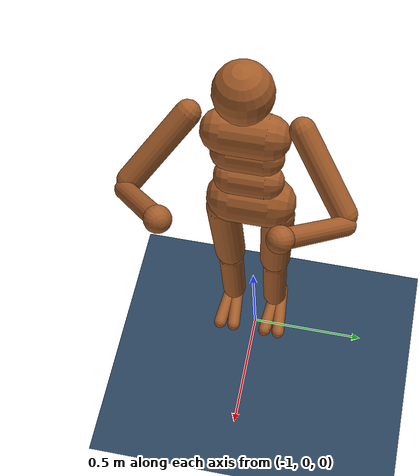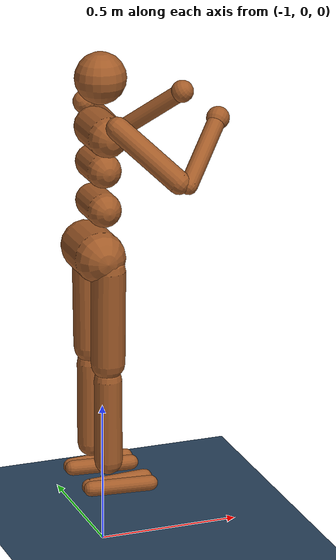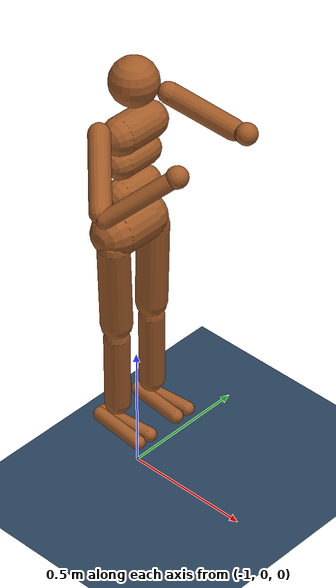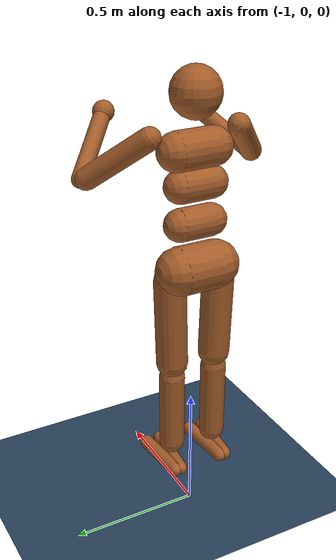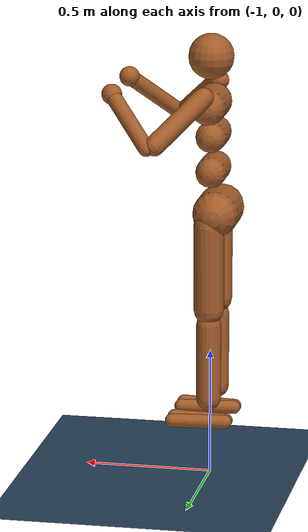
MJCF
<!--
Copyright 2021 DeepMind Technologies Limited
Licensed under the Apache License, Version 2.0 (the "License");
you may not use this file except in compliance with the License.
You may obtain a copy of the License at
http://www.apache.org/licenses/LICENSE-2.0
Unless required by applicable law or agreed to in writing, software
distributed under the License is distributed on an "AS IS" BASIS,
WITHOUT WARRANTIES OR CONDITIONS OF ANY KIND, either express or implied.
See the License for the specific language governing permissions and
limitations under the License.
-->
<mujoco model="Humanoid">
  <option timestep="0.005"/>

  <size memory="100M"/>

  <asset>
    <texture type="skybox" builtin="gradient" rgb1=".3 .5 .7" rgb2="0 0 0" width="512" height="512"/>
    <texture name="body" type="cube" builtin="flat" mark="cross" width="127" height="1278"
             rgb1="0.8 0.6 0.4" rgb2="0.8 0.6 0.4" markrgb="1 1 1" random="0.01"/>
    <material name="body" texture="body" texuniform="true" rgba="0.8 0.6 .4 1"/>
    <texture name="grid" type="2d" builtin="checker" width="512" height="512" rgb1=".1 .2 .3" rgb2=".2 .3 .4"/>
    <material name="grid" texture="grid" texrepeat="1 1" texuniform="true" reflectance=".2"/>
  </asset>

  <default>
    <motor ctrlrange="-1 1" ctrllimited="true"/>
    <default class="body">
      <geom type="capsule" condim="1" friction=".7" solimp=".9 .99 .003" solref=".015 1" material="body"/>
      <joint type="hinge" damping=".2" stiffness="1" armature=".01" limited="true" solimplimit="0 .99 .01"/>
      <default class="big_joint">
        <joint damping="5" stiffness="10"/>
        <default class="big_stiff_joint">
          <joint stiffness="20"/>
        </default>
      </default>
    </default>
  </default>

  <visual>
    <map force="0.1" zfar="30"/>
    <rgba haze="0.15 0.25 0.35 1"/>
    <quality shadowsize="4096"/>
    <global offwidth="800" offheight="800"/>
  </visual>

  <worldbody>
    <geom size="2.6 2.6 .05" type="plane" material="grid" condim="3"/>
    <light dir=".2 1 -.4" diffuse=".8 .8 .8" specular="0.3 0.3 0.3" pos="-2 -10 4" cutoff="35"/>
    <light dir="-.2 1 -.4" diffuse=".8 .8 .8" specular="0.3 0.3 0.3" pos="2 -10 4" cutoff="35"/>

    <body name="1a_torso" pos="-1 0 1.5" childclass="body">
      <camera name="1a_back" pos="-3 0 1" xyaxes="0 -1 0 1 0 2" mode="trackcom"/>
      <camera name="1a_side" pos="0 -3 1" xyaxes="1 0 0 0 1 2" mode="trackcom"/>
      <freejoint name="1a_root"/>
      <geom name="1a_torso" fromto="0 -.07 0 0 .07 0" size=".07"/>
      <geom name="1a_upper_waist" fromto="-.01 -.06 -.12 -.01 .06 -.12" size=".06"/>
      <body name="1a_head" pos="0 0 .19">
        <geom name="1a_head" type="sphere" size=".09"/>
        <camera name="1a_egocentric" pos=".09 0 0" xyaxes="0 -1 0 .1 0 1" fovy="80"/>
      </body>
      <body name="1a_lower_waist" pos="-.01 0 -.26">
        <geom name="1a_lower_waist" fromto="0 -.06 0 0 .06 0" size=".06"/>
        <joint name="1a_abdomen_z" pos="0 0 .065" axis="0 0 1" range="-45 45" class="big_stiff_joint"/>
        <joint name="1a_abdomen_y" pos="0 0 .065" axis="0 1 0" range="-75 30" class="big_joint"/>
        <body name="1a_pelvis" pos="0 0 -.165">
          <joint name="1a_abdomen_x" pos="0 0 .1" axis="1 0 0" range="-35 35" class="big_joint"/>
          <geom name="1a_butt" fromto="-.02 -.07 0 -.02 .07 0" size=".09"/>
          <body name="1a_right_thigh" pos="0 -.1 -.04">
            <joint name="1a_right_hip_x" axis="1 0 0" range="-25 5" class="big_joint"/>
            <joint name="1a_right_hip_z" axis="0 0 1" range="-60 35" class="big_joint"/>
            <joint name="1a_right_hip_y" axis="0 1 0" range="-110 20" class="big_stiff_joint"/>
            <geom name="1a_right_thigh" fromto="0 0 0 0 .01 -.34" size=".06"/>
            <body name="1a_right_shin" pos="0 .01 -.403">
              <joint name="1a_right_knee" pos="0 0 .02" axis="0 -1 0" range="-160 2"/>
              <geom name="1a_right_shin" fromto="0 0 0 0 0 -.3"  size=".049"/>
              <body name="1a_right_foot" pos="0 0 -.39">
                <joint name="1a_right_ankle_y" pos="0 0 .08" axis="0 1 0" range="-50 50" stiffness="6"/>
                <joint name="1a_right_ankle_x" pos="0 0 .04" axis="1 0 .5" range="-50 50" stiffness="3"/>
                <geom name="1a_right_right_foot" fromto="-.07 -.02 0 .14 -.04 0" size=".027"/>
                <geom name="1a_left_right_foot" fromto="-.07 0 0 .14  .02 0" size=".027"/>
              </body>
            </body>
          </body>
          <body name="1a_left_thigh" pos="0 .1 -.04">
            <joint name="1a_left_hip_x" axis="-1 0 0" range="-25 5" class="big_joint"/>
            <joint name="1a_left_hip_z" axis="0 0 -1" range="-60 35" class="big_joint"/>
            <joint name="1a_left_hip_y" axis="0 1 0" range="-110 20" class="big_stiff_joint"/>
            <geom name="1a_left_thigh" fromto="0 0 0 0 -.01 -.34" size=".06"/>
            <body name="1a_left_shin" pos="0 -.01 -.403">
              <joint name="1a_left_knee" pos="0 0 .02" axis="0 -1 0" range="-160 2"/>
              <geom name="1a_left_shin" fromto="0 0 0 0 0 -.3"  size=".049"/>
              <body name="1a_left_foot" pos="0 0 -.39">
                <joint name="1a_left_ankle_y" pos="0 0 .08" axis="0 1 0" range="-50 50" stiffness="6"/>
                <joint name="1a_left_ankle_x" pos="0 0 .04" axis="1 0 .5" range="-50 50" stiffness="3"/>
                <geom name="1a_left_left_foot" fromto="-.07 .02 0 .14 .04 0" size=".027"/>
                <geom name="1a_right_left_foot" fromto="-.07 0 0 .14 -.02 0" size=".027"/>
              </body>
            </body>
          </body>
        </body>
      </body>
      <body name="1a_right_upper_arm" pos="0 -.17 .06">
        <joint name="1a_right_shoulder1" axis="2 1 1"  range="-85 60"/>
        <joint name="1a_right_shoulder2" axis="0 -1 1" range="-85 60"/>
        <geom name="1a_right_upper_arm" fromto="0 0 0 .16 -.16 -.16" size=".04 .16"/>
        <body name="1a_right_lower_arm" pos=".18 -.18 -.18">
          <joint name="1a_right_elbow" axis="0 -1 1" range="-90 50" stiffness="0"/>
          <geom name="1a_right_lower_arm" fromto=".01 .01 .01 .17 .17 .17" size=".031"/>
          <body name="1a_right_hand" pos=".18 .18 .18">
            <geom name="1a_right_hand" type="sphere" size=".04" zaxis="1 1 1"/>
          </body>
        </body>
      </body>
      <body name="1a_left_upper_arm" pos="0 .17 .06">
        <joint name="1a_left_shoulder1" axis="2 -1 1" range="-60 85"/>
        <joint name="1a_left_shoulder2" axis="0 1 1"  range="-60 85"/>
        <geom name="1a_left_upper_arm" fromto="0 0 0 .16 .16 -.16" size=".04 .16"/>
        <body name="1a_left_lower_arm" pos=".18 .18 -.18">
          <joint name="1a_left_elbow" axis="0 -1 -1" range="-90 50" stiffness="0"/>
          <geom name="1a_left_lower_arm" fromto=".01 -.01 .01 .17 -.17 .17" size=".031"/>
          <body name="1a_left_hand" pos=".18 -.18 .18">
            <geom name="1a_left_hand" type="sphere" size=".04" zaxis="1 -1 1"/>
          </body>
        </body>
      </body>
    </body>
  </worldbody>

  <actuator>
    <motor gear="40"  joint="1a_abdomen_y"/>
    <motor gear="40"  joint="1a_abdomen_z"/>
    <motor gear="40"  joint="1a_abdomen_x"/>
    <motor gear="40"  joint="1a_right_hip_x"/>
    <motor gear="40"  joint="1a_right_hip_z"/>
    <motor gear="120" joint="1a_right_hip_y"/>
    <motor gear="80"  joint="1a_right_knee"/>
    <motor gear="20"  joint="1a_right_ankle_x"/>
    <motor gear="20"  joint="1a_right_ankle_y"/>
    <motor gear="40"  joint="1a_left_hip_x"/>
    <motor gear="40"  joint="1a_left_hip_z"/>
    <motor gear="120" joint="1a_left_hip_y"/>
    <motor gear="80"  joint="1a_left_knee"/>
    <motor gear="20"  joint="1a_left_ankle_x"/>
    <motor gear="20"  joint="1a_left_ankle_y"/>
    <motor gear="20"  joint="1a_right_shoulder1"/>
    <motor gear="20"  joint="1a_right_shoulder2"/>
    <motor gear="40"  joint="1a_right_elbow"/>
    <motor gear="20"  joint="1a_left_shoulder1"/>
    <motor gear="20"  joint="1a_left_shoulder2"/>
    <motor gear="40"  joint="1a_left_elbow"/>
  </actuator>

</mujoco>
